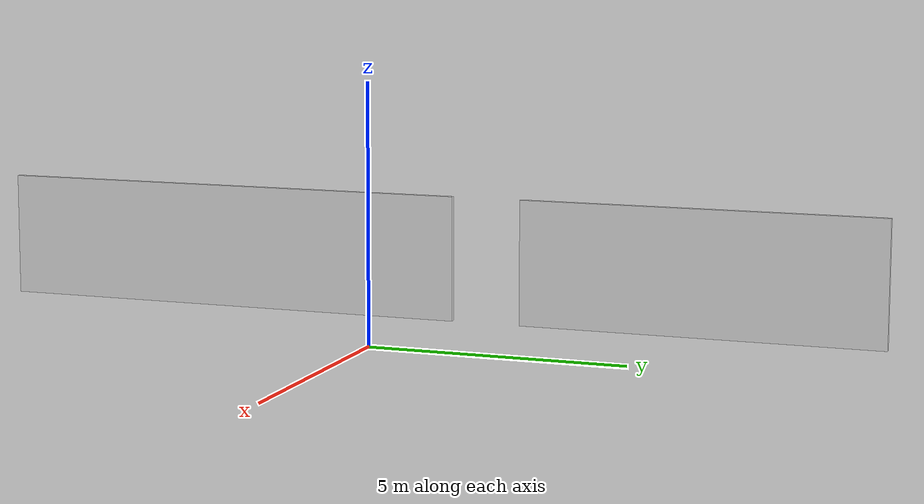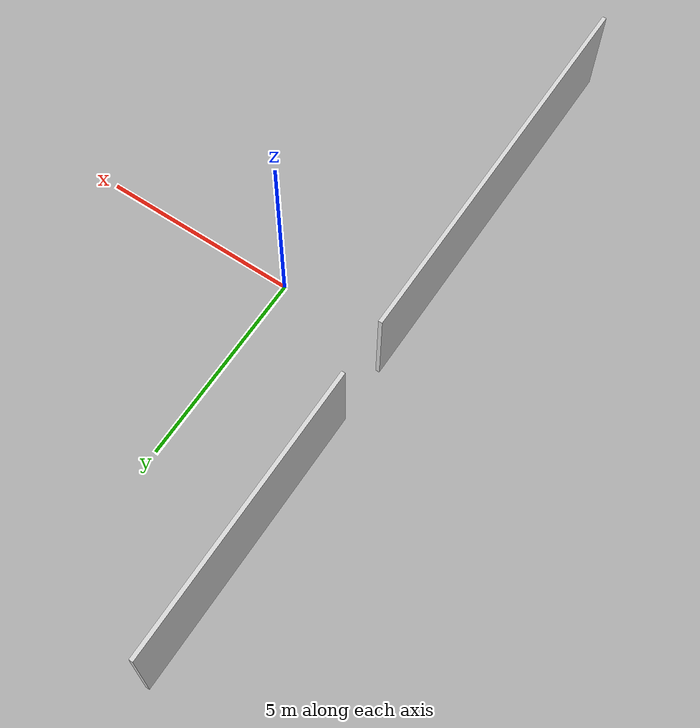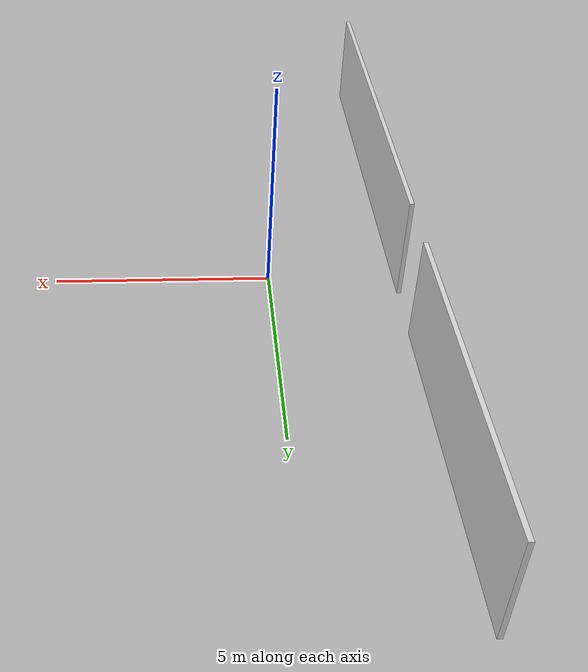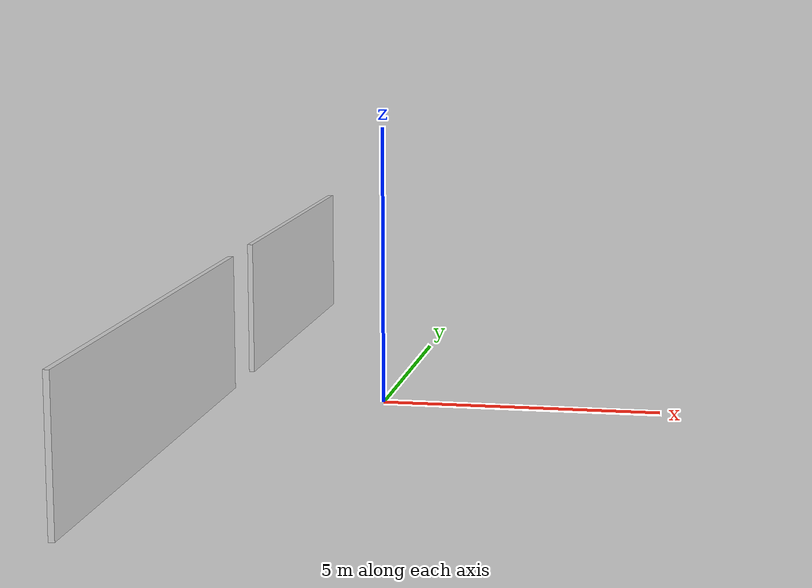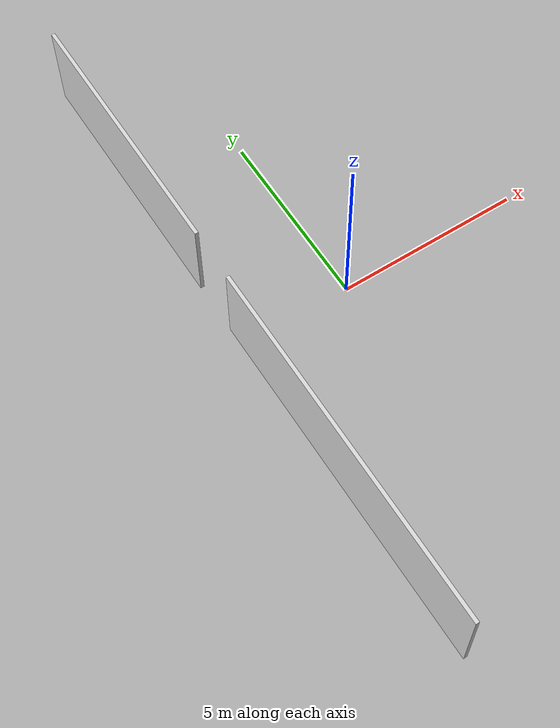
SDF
<?xml version="1.0" ?>
<sdf version="1.6">
  <model name="study_track_gate_l">
    <static>true</static>

    <link name='wall_l'>
      <pose>-3 5.6 1.25 0 0 0</pose>
      <collision name='collision'>
        <geometry>
          <box>
            <size>0.1 7.2 2.5</size>
          </box>
        </geometry>
      </collision>
      <visual name='box_visual'>
        <geometry>
          <box>
            <size>0.1 7.2 2.5</size>
          </box>
        </geometry>
        <material>
          <ambient>0.85 0.85 0.85 1</ambient>
          <diffuse>0.85 0.85 0.85 1</diffuse>
          <specular>0.15 0.15 0.15 1</specular>
          <emissive>0 0 0 0</emissive>
        </material>
      </visual>
    </link>

    <link name='wall_r'>
      <pose>-3 -4.3 1.25 0 0 0</pose>
      <collision name='collision'>
        <geometry>
          <box>
            <size>0.1 9.8 2.5</size>
          </box>
        </geometry>
      </collision>
      <visual name='box_visual'>
        <geometry>
          <box>
            <size>0.1 9.8 2.5</size>
          </box>
        </geometry>
        <material>
          <ambient>0.85 0.85 0.85 1</ambient>
          <diffuse>0.85 0.85 0.85 1</diffuse>
          <specular>0.15 0.15 0.15 1</specular>
          <emissive>0 0 0 0</emissive>
        </material>
      </visual>
    </link>

  </model>
</sdf>
